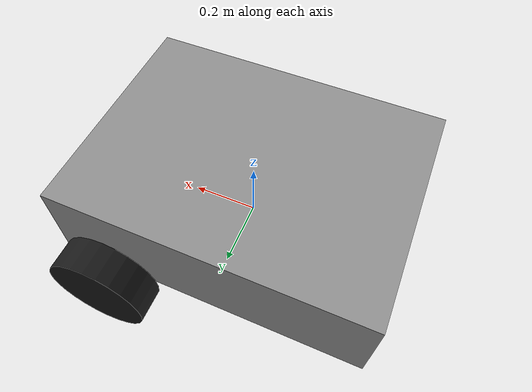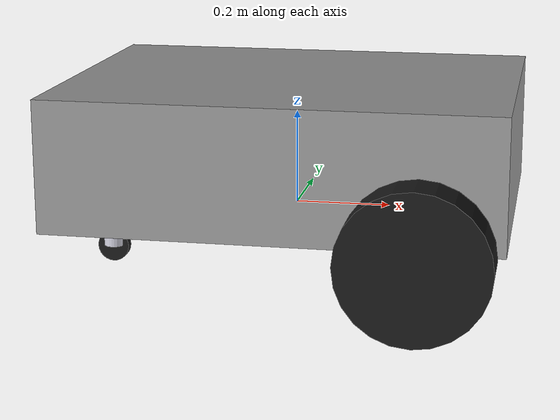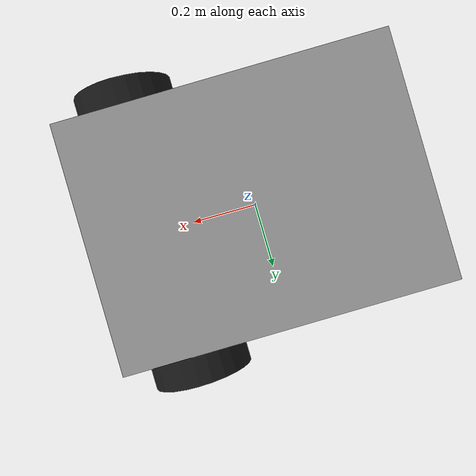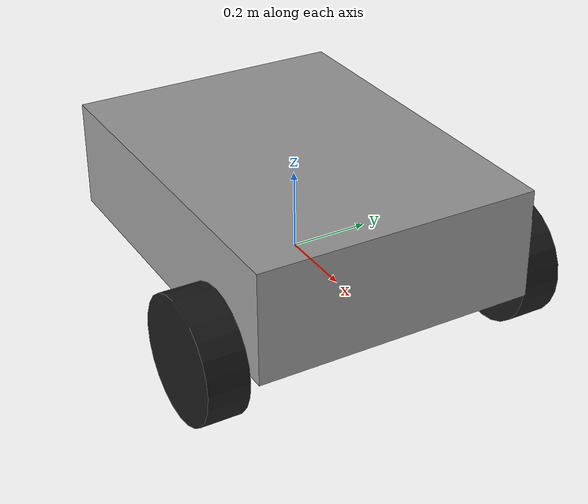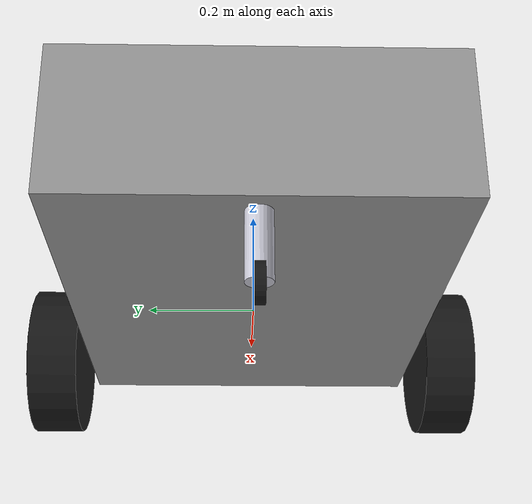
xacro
<?xml version="1.0"?>
<robot xmlns:xacro="http://www.ros.org/wiki/xacro" name="igvc_robot">

  <!-- Robot Properties -->
  <xacro:property name="base_length" value="0.936718"/>
  <xacro:property name="base_width" value="0.7"/>
  <xacro:property name="base_height" value="0.275"/>

  <xacro:property name="wheel_radius" value="0.1524"/>
  <xacro:property name="wheel_width" value="0.1"/>
  <xacro:property name="wheel_y_offset" value="0.411"/>
  <xacro:property name="wheel_x_offset" value="0.3"/>
  <xacro:property name="mass_base" value="1.0"/>
  <xacro:property name="mass_wheel" value="0.5"/>
  <xacro:property name="connecting_rod_length" value="0.1715"/>
  <xacro:property name="connecting_rod_radius" value="0.0233"/>
  <xacro:property name="connecting_rod_x_offset" value="-0.418"/>
  <xacro:property name="castor_wheel_radius" value="0.035"/>
  <xacro:property name="castor_wheel_width" value="0.01867"/>

  <xacro:property name="M_PI" value="3.1415926535897931"/>

  <!-- MATERIALS (for RViz) -->
  <material name="metal_gray"><color rgba="0.6 0.6 0.6 1.0"/></material>
  <material name="black_rubber"><color rgba="0.1 0.1 0.1 1.0"/></material>
  <material name="aluminum_silver"><color rgba="0.8 0.8 0.85 1.0"/></material>
  <material name="blue_highlight"><color rgba="0.0 0.3 0.8 1.0"/></material>

  <!-- Base Link -->
  <link name="base_link">
    <visual>
      <geometry><box size="${base_length} ${base_width} ${base_height}"/></geometry>
      <origin xyz="0 0 ${base_height/2}" rpy="0 0 0"/>
      <material name="metal_gray"/>
    </visual>
    <collision>
      <geometry><box size="${base_length} ${base_width} ${base_height}"/></geometry>
      <origin xyz="0 0 ${base_height/2}" rpy="0 0 0"/>
    </collision>
    <inertial>
      <mass value="${mass_base}"/>
      <origin xyz="0 0 ${base_height/2}" rpy="0 0 0"/>
      <inertia ixx="0.083" iyy="0.083" izz="0.083" ixy="0" ixz="0" iyz="0"/>
    </inertial>
  </link>

  <gazebo reference="base_link">
    <material>Gazebo/Gray</material>
  </gazebo>

  <!-- Left Wheel -->
  <link name="left_wheel">
    <visual>
      <geometry><cylinder length="${wheel_width}" radius="${wheel_radius}"/></geometry>
      <origin xyz="0 0 0" rpy="0 1.5708 0"/>
      <material name="black_rubber"/>
    </visual>
    <collision>
      <geometry><cylinder length="${wheel_width}" radius="${wheel_radius}"/></geometry>
      <origin xyz="0 0 0" rpy="0 1.5708 0"/>
    </collision>
    <inertial>
      <mass value="${mass_wheel}"/>
      <origin xyz="0 0 0" rpy="0 0 0"/>
      <inertia ixx="0.006" iyy="0.006" izz="0.001" ixy="0" ixz="0" iyz="0"/>
    </inertial>
  </link>

  <joint name="left_wheel_joint" type="continuous">
    <parent link="base_link"/>
    <child link="left_wheel"/>
    <origin xyz="${wheel_x_offset} ${wheel_y_offset} 0" rpy="0 0 1.57"/>
    <axis xyz="0 1 0"/>
  </joint>

  <gazebo reference="left_wheel">
    <material>Gazebo/Black</material>
  </gazebo>

  <!-- Right Wheel -->
  <link name="right_wheel">
    <visual>
      <geometry><cylinder length="${wheel_width}" radius="${wheel_radius}"/></geometry>
      <origin xyz="0 0 0" rpy="0 1.5708 0"/>
      <material name="black_rubber"/>
    </visual>
    <collision>
      <geometry><cylinder length="${wheel_width}" radius="${wheel_radius}"/></geometry>
      <origin xyz="0 0 0" rpy="0 1.5708 0"/>
    </collision>
    <inertial>
      <mass value="${mass_wheel}"/>
      <origin xyz="0 0 0" rpy="0 0 0"/>
      <inertia ixx="0.006" iyy="0.006" izz="0.001" ixy="0" ixz="0" iyz="0"/>
    </inertial>
  </link>

  <joint name="right_wheel_joint" type="continuous">
    <parent link="base_link"/>
    <child link="right_wheel"/>
    <origin xyz="${wheel_x_offset} -${wheel_y_offset} 0" rpy="0 0 1.57"/>
    <axis xyz="0 1 0"/>
  </joint>

  <gazebo reference="right_wheel">
    <material>Gazebo/Black</material>
  </gazebo>

  <!-- Connecting Rod -->
  <link name="connecting_rod">
    <visual>
      <geometry><cylinder length="${connecting_rod_length}" radius="${connecting_rod_radius}"/></geometry>
      <origin xyz="0 0 0" rpy="0 0 0"/>
      <material name="aluminum_silver"/>
    </visual>
    <collision>
      <geometry><cylinder length="${connecting_rod_length}" radius="${connecting_rod_radius}"/></geometry>
      <origin xyz="0 0 0" rpy="0 0 0"/>
    </collision>
    <inertial>
      <mass value="0.2"/>
      <origin xyz="0 0 0" rpy="0 0 0"/>
      <inertia ixx="0.002" iyy="0.002" izz="0.001" ixy="0" ixz="0" iyz="0"/>
    </inertial>
  </link>

  <joint name="connecting_rod_joint" type="continuous">
    <parent link="base_link"/>
    <child link="connecting_rod"/>
    <origin xyz="${connecting_rod_x_offset} 0 -${connecting_rod_length/2-0.05}" rpy="0 0 0"/>
    <axis xyz="0 0 1"/>
  </joint>

  <gazebo reference="connecting_rod">
    <material>Gazebo/Silver</material>
  </gazebo>

  <!-- Castor Wheel -->
  <link name="castor_wheel">
    <visual>
      <geometry><cylinder length="${castor_wheel_width}" radius="${castor_wheel_radius}"/></geometry>
      <origin xyz="0 0 0" rpy="0 1.5708 0"/>
      <material name="black_rubber"/>
    </visual>
    <collision>
      <geometry><cylinder length="${castor_wheel_width}" radius="${castor_wheel_radius}"/></geometry>
      <origin xyz="0 0 0" rpy="0 1.5708 0"/>
    </collision>
    <inertial>
      <mass value="0.2"/>
      <origin xyz="0 0 0" rpy="0 0 0"/>
      <inertia ixx="0.006" iyy="0.006" izz="0.001" ixy="0" ixz="0" iyz="0"/>
    </inertial>
  </link>

  <joint name="castor_wheel_joint" type="continuous">
    <parent link="connecting_rod"/>
    <child link="castor_wheel"/>
    <origin xyz="0 0 -${connecting_rod_length/2}" rpy="0 0 1.57"/>
    <axis xyz="0 1 0"/>
  </joint>

  <gazebo reference="castor_wheel">
    <material>Gazebo/Black</material>
  </gazebo>

  <!-- Base Footprint -->

  <link name="base_footprint"/>
  <joint name="base_joint" type="fixed">
    <parent link="base_footprint"/>
    <child link="base_link"/>
    <origin xyz="0 0 0" rpy="0 0 0"/>
  </joint>

  <!-- Differential Drive -->

  <gazebo>
  <plugin name='diff_drive' filename='libgazebo_ros_diff_drive.so'>
    <ros>
      <namespace>/</namespace>
    </ros>

    <!-- wheels -->
    <left_joint>left_wheel_joint</left_joint>
    <right_joint>right_wheel_joint</right_joint>

    <!-- kinematics -->
    <wheel_separation>${2*wheel_y_offset}</wheel_separation>
    <wheel_diameter>${2*wheel_radius}</wheel_diameter>

    <!-- limits -->
    <max_wheel_torque>20</max_wheel_torque>
    <max_wheel_acceleration>1.0</max_wheel_acceleration>

    <!-- output -->
    <publish_odom>true</publish_odom>
    <publish_odom_tf>true</publish_odom_tf>
    <publish_wheel_tf>true</publish_wheel_tf>

    <odometry_frame>odom</odometry_frame>
    <robot_base_frame>base_link</robot_base_frame>
  </plugin>
  </gazebo>

</robot>
